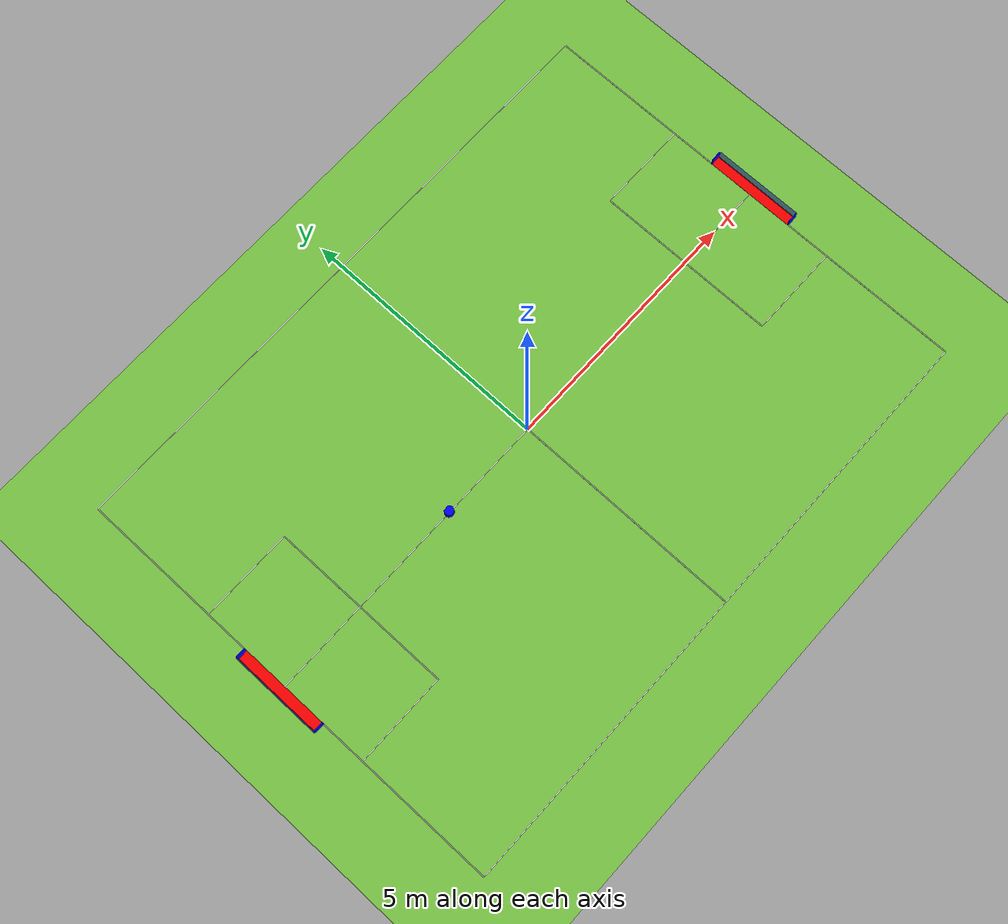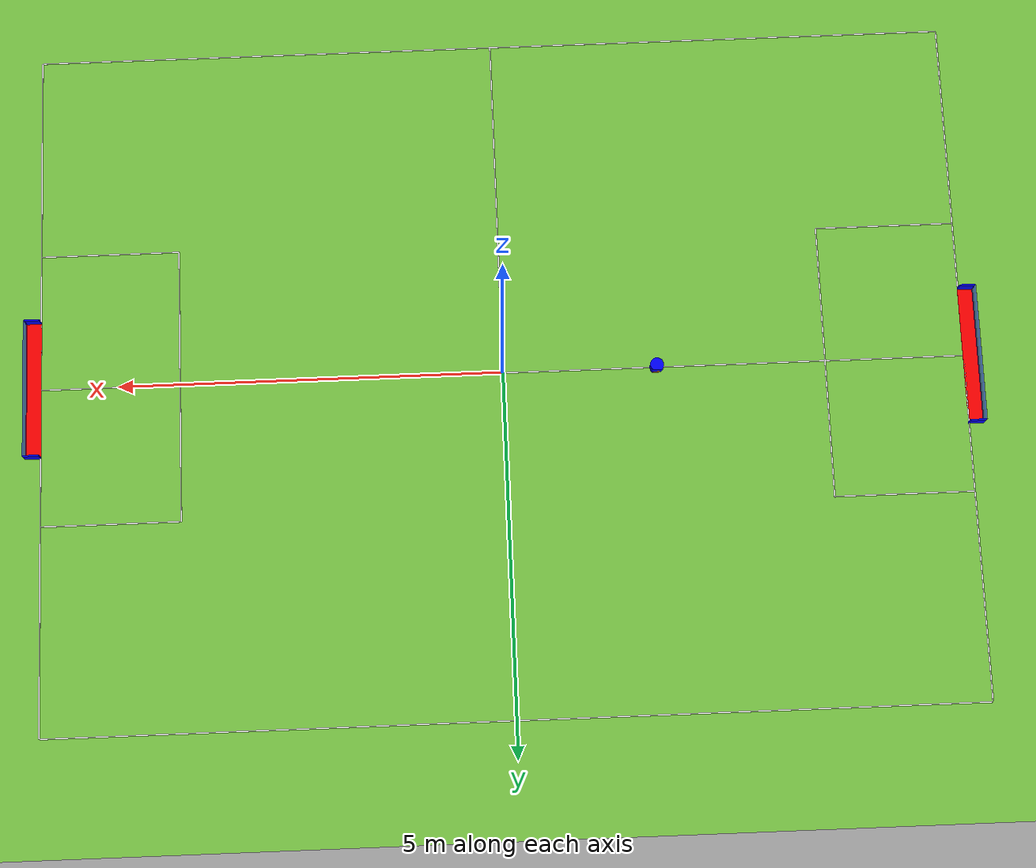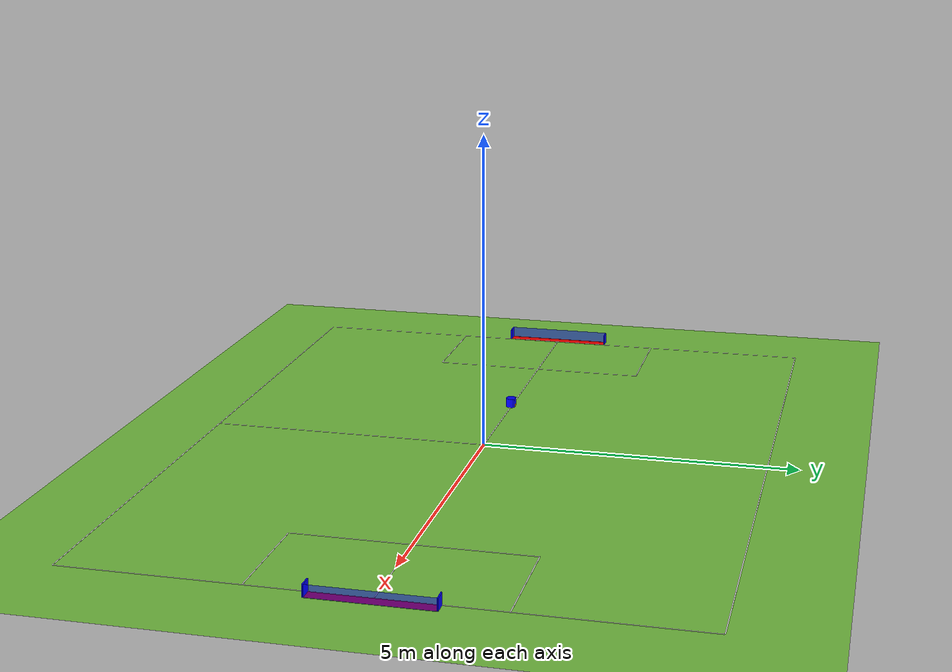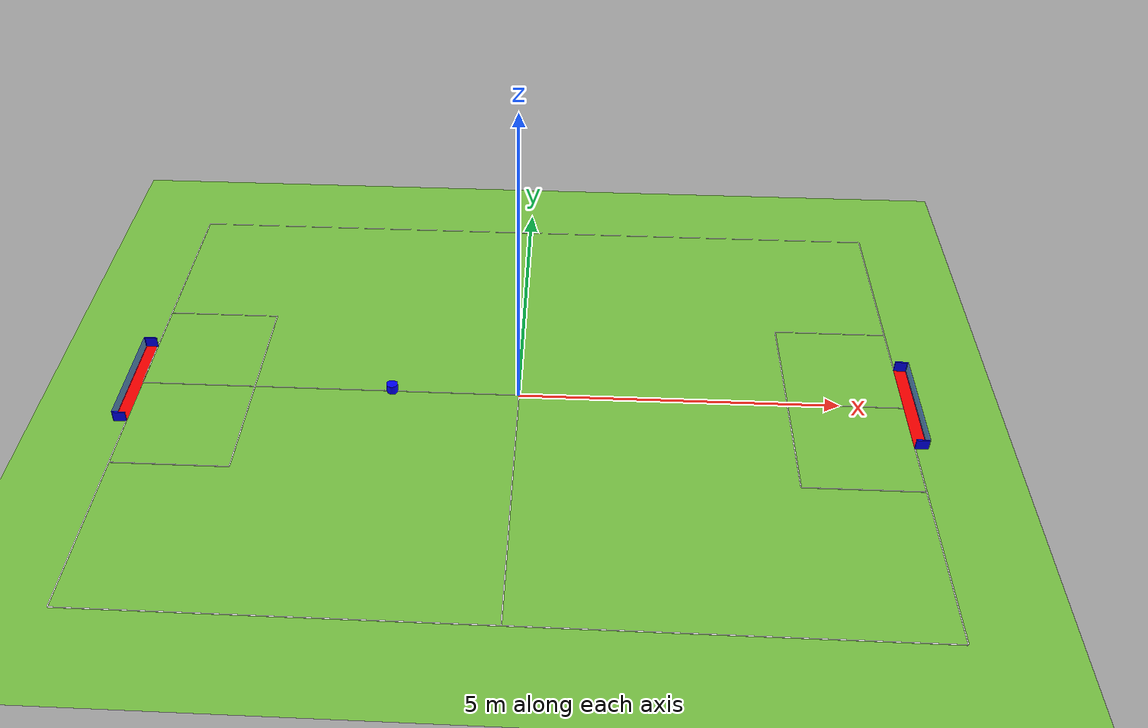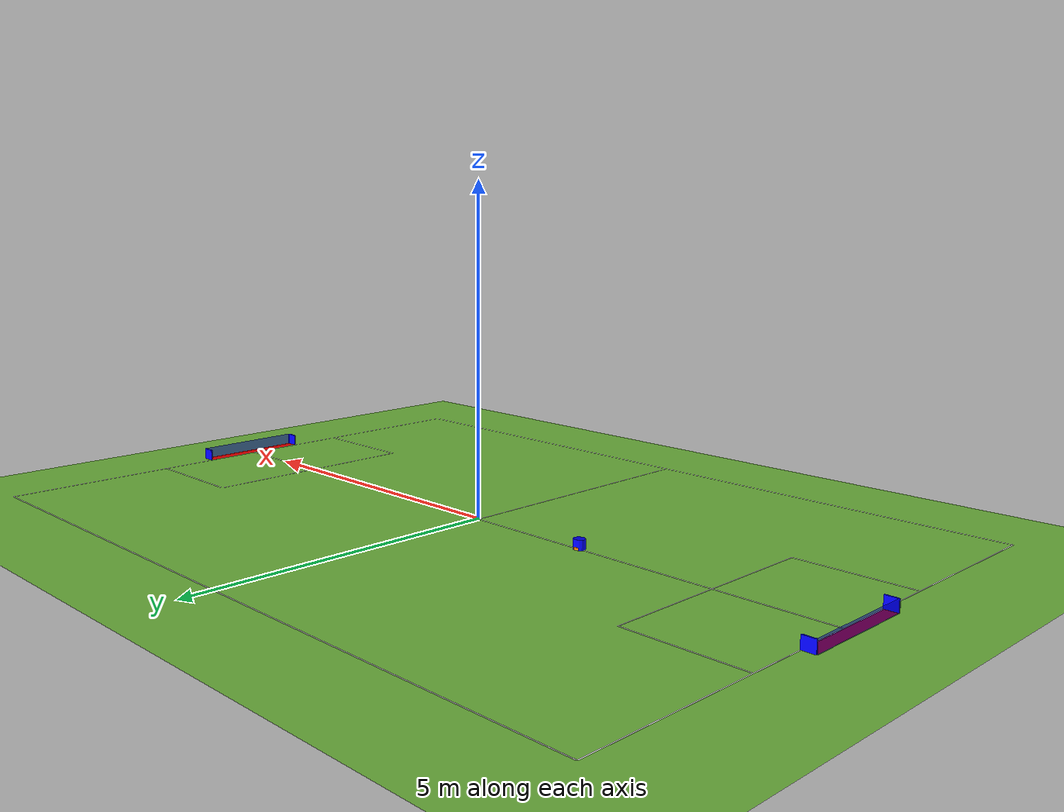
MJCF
<mujoco>
  <asset>
    <mesh name="robot_stl" file="robot_decimated.stl" scale="1 1 1"/>
  </asset>

  <default>
    <geom contype="0" conaffinity="0"/>
  </default>

  <worldbody>
    <camera name="top" pos="0 0 12"/>

    <geom name="field" type="plane" size="7.5 6 0.01" pos="0 0 -0.01" rgba="0.48 0.78 0.27 1"/>

    <body name="left_goal" pos="-6 0 0">
        <site name="left_goal_box" pos="-0.1 0 0" size="0.1 0.9 0.001" rgba="1 0 0 1" type="box"/>
        <geom name="left_goal_side_top" type="box" size="0.1 0.01 0.09" pos="-0.1 0.9 0.09" rgba="0 0 1 1"/>
        <geom name="left_goal_side_bottom" type="box" size="0.1 0.01 0.09" pos="-0.1 -0.9 0.09" rgba="0 0 1 1"/>
        <geom name="left_goal_backside" type="box" pos="-0.2 0 0.09" size="0.01 0.9 0.09" rgba="0 0 1 0.5"/>
    </body>

    <body name="right_goal" pos="6 0 0">
        <site name="right_goal_box" pos="0.1 0 0" size="0.1 0.9 0.001" rgba="1 0 0 1" type="box"/>
        <geom name="right_goal_side_top" type="box" size="0.1 0.01 0.09" pos="0.1 0.9 0.09" rgba="0 0 1 1"/>
        <geom name="right_goal_side_bottom" type="box" size="0.1 0.01 0.09" pos="0.1 -0.9 0.09" rgba="0 0 1 1"/>
        <geom name="right_goal_backside" type="box" pos="0.2 0 0.09" size="0.01 0.9 0.09" rgba="0 0 1 0.5"/>
    </body>

    <site name="field_line_north" pos="0 4.504 0" size="6 0.008 0.001" rgba="1 1 1 1" type="box"/>
    <site name="field_line_south" pos="0 -4.504 0" size="6 0.008 0.001" rgba="1 1 1 1" type="box"/>
    <site name="field_line_east" pos="6.008 0 0" size="0.008 4.5 0.001" rgba="1 1 1 1" type="box"/>
    <site name="field_line_west" pos="-6.008 0 0" size="0.008 4.5 0.001" rgba="1 1 1 1" type="box"/>
    <site name="field_line_vertical" pos="0 0 0" size="0.008 4.5 0.001" rgba="1 1 1 1" type="box"/>
    <site name="field_line_horizontal" pos="0 0 0" size="6 0.008 0.001" rgba="1 1 1 1" type="box"/>
    <site name="left_goal_box_top" pos="-5.1 1.8 0.0005" size="0.9 0.008 0.001" rgba="1 1 1 1" type="box"/>
    <site name="left_goal_box_bottom" pos="-5.1 -1.8 0.0005" size="0.9 0.008 0.001" rgba="1 1 1 1" type="box"/>
    <site name="left_goal_box_front" pos="-4.2 0 0.0005" size="0.008 1.8 0.001" rgba="1 1 1 1" type="box"/>
    <site name="right_goal_box_top" pos="5.1 1.8 0.0005" size="0.9 0.008 0.001" rgba="1 1 1 1" type="box"/>
    <site name="right_goal_box_bottom" pos="5.1 -1.8 0.0005" size="0.9 0.008 0.001" rgba="1 1 1 1" type="box"/>
    <site name="right_goal_box_front" pos="4.2 0 0.0005" size="0.008 1.8 0.001" rgba="1 1 1 1" type="box"/>

    <body name="robot_planar_0" pos="-2 0 0">
        <joint name="x_slide_0" type="slide" axis="1 0 0" pos="0 0 0" damping="0.8" armature="0.6"/>
        <joint name="y_slide_0" type="slide" axis="0 1 0" pos="0 0 0" damping="0.8" armature="0.6"/>
        <joint name="z_rotate_0" type="hinge" axis="0 0 1" pos="0 0 0" damping="0" armature="0.5"/>

        <geom name="robot_mesh_0" type="mesh" mesh="robot_stl" rgba="0 0 1 1" mass="5"/>

        <body name="kicker_body_0" pos="0 0.065 0.02">
            <geom name="kicker_plate_geom_0" type="box" size="0.04 0.004 0.02" rgba="1 0.5 0 1"
                  mass="0.5" friction="1.8 0.005 0.05" solref="0.01 1" solimp="0.95 0.98 0.001"/>
            <site name="kicker_force_site_0" pos="0.04 0 0" size="0.01" rgba="1 0 0 0.5" type="sphere"/>
        </body>
    </body>

    <body name="golf_ball" pos="0 0 0.0115">
        <joint name="ball_x_slide" type="slide" axis="1 0 0" limited="false" damping="0.05" armature="0.001"/>
        <joint name="ball_y_slide" type="slide" axis="0 1 0" limited="false" damping="0.05" armature="0.001"/>
        <geom name="golf_ball_geom" type="sphere" size="0.0115" rgba="1 0 0 1" mass="0.046" friction="0.3 0.1 0.1" solref="0.01 1" solimp="0.9 0.98 0.001"/>
        <site name="ball_center_site" pos="0 0 0" size="0.005" rgba="1 1 0 0.5" type="sphere"/>
    </body>

  </worldbody>

  <actuator>

    <velocity name="x_vel_0" joint="x_slide_0" kv="22" ctrlrange="-3 3"/>
    <velocity name="y_vel_0" joint="y_slide_0" kv="22" ctrlrange="-3 3"/>
    <velocity name="rot_vel_0" joint="z_rotate_0" kv="5"/>
    <adhesion name="dribbler_0" body="golf_ball" ctrlrange="0 1" gain="0.2"/>

    <general name="kicker_force_actuator_0" dyntype="none" gaintype="fixed" biastype="none"
             site="ball_center_site" refsite="kicker_force_site_0"
             ctrlrange="0 1" forcelimited="true" forcerange="0 500"/>

    </actuator>

  <contact>

    <pair geom1="robot_mesh_0" geom2="golf_ball_geom"/>
    <pair geom1="kicker_plate_geom_0" geom2="golf_ball_geom"/>
    <exclude body1="robot_planar_0" body2="kicker_body_0"/>

    </contact>

</mujoco>
